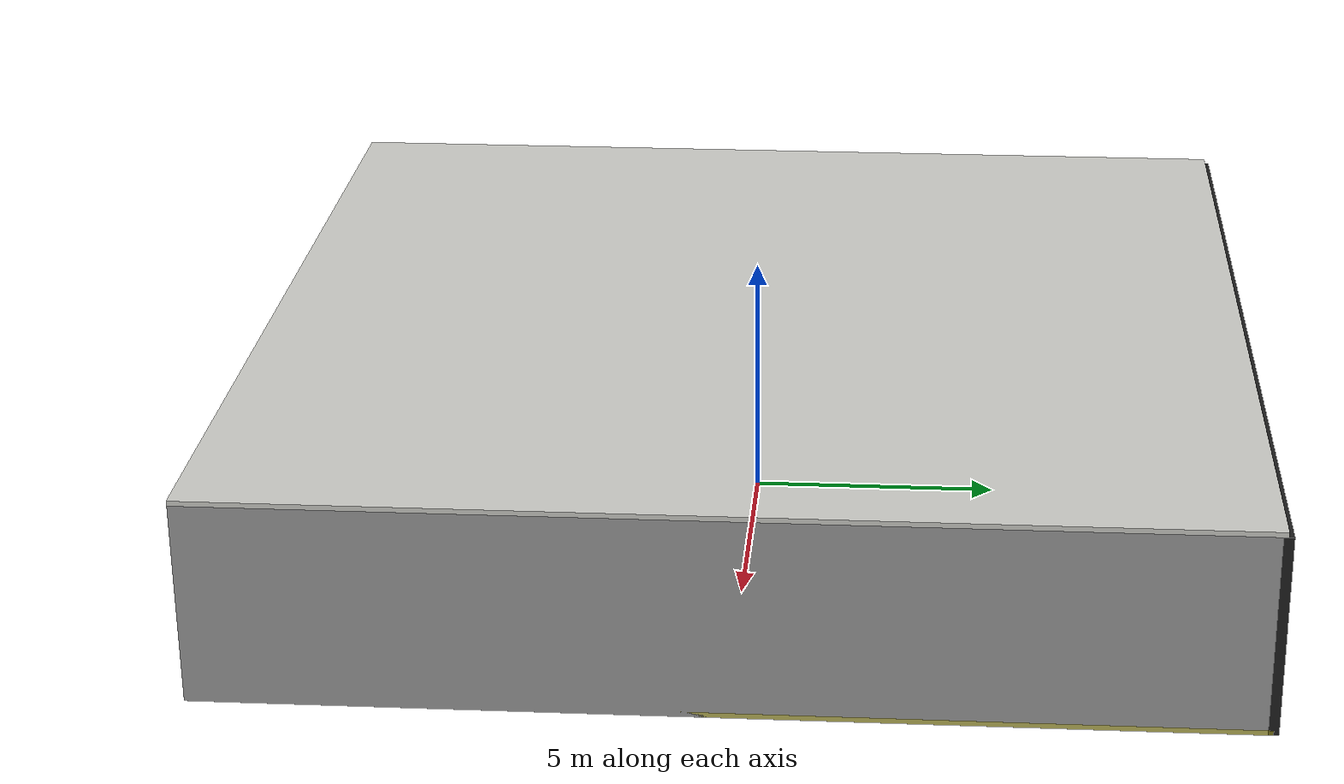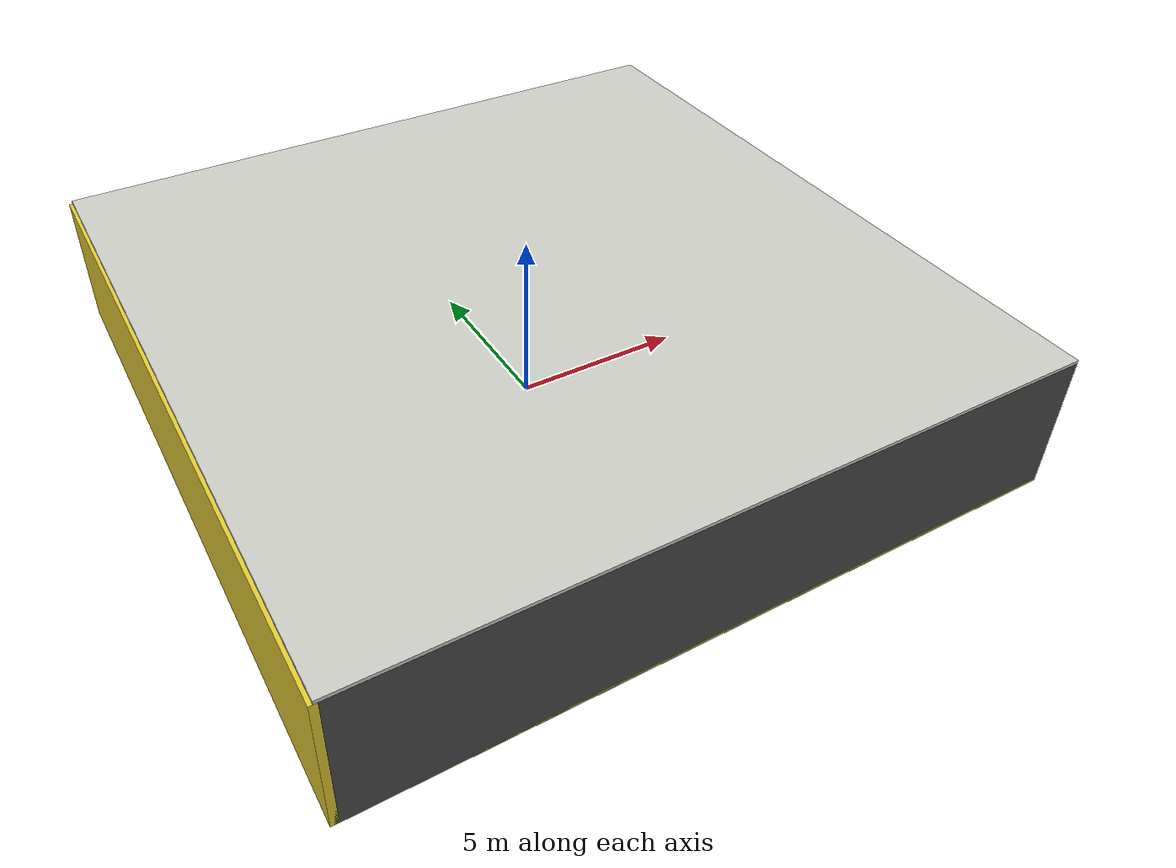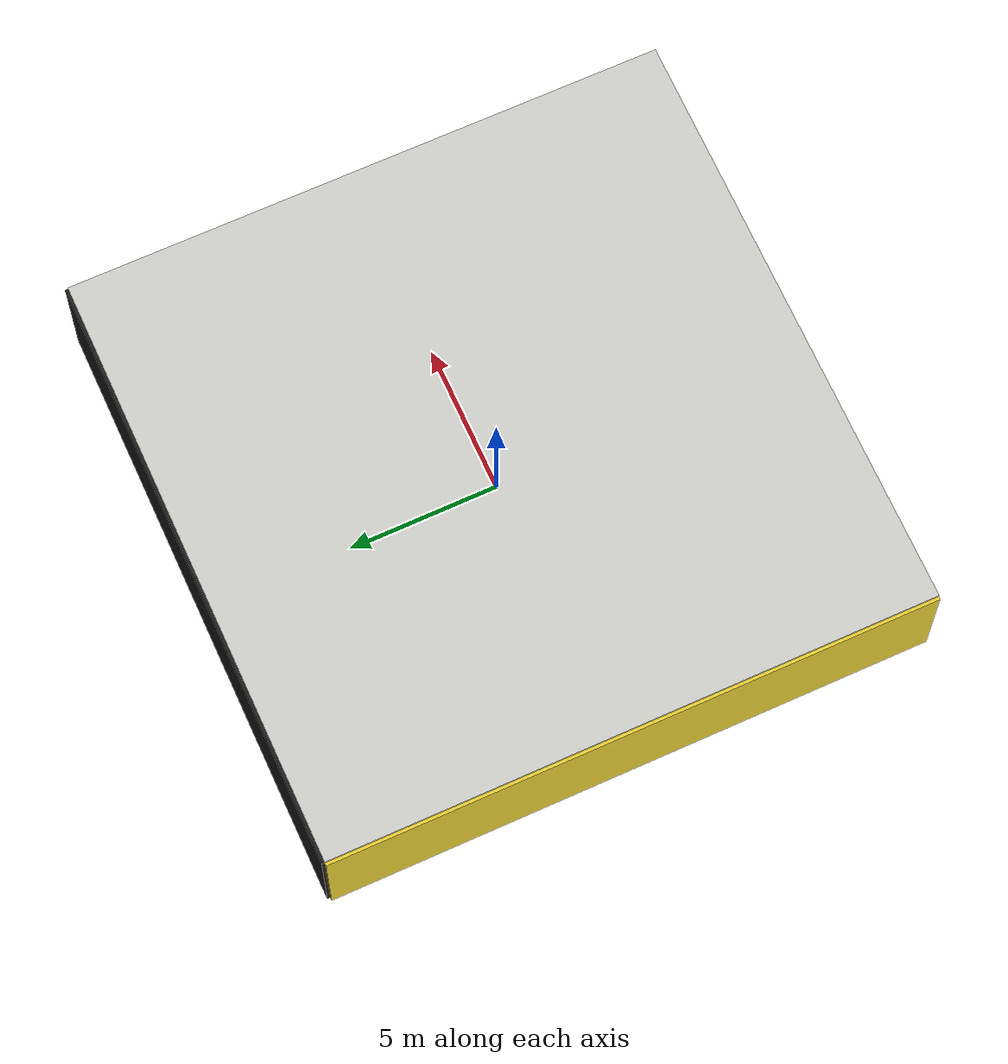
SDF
<sdf version="1.4">
 <world name="default">
  <physics type="ode">
   <max_step_size>0.001</max_step_size>
   <real_time_factor>1</real_time_factor>
   <real_time_update_rate>1000</real_time_update_rate>
   <gravity>0 0 -9.8</gravity>
  </physics>
  <scene><ambient>0.4 0.4 0.4 1</ambient><background>0.7 0.7 0.7 1</background><shadows>1</shadows></scene>
  <model name="Surrounding">
   <static>1</static>
   <link name="Ceiling">
    <collision name="Ceiling_Collision"><geometry><box><size>20 20 0.1</size></box></geometry></collision>
    <visual name="Ceiling_Visual">
     <geometry><box><size>20 20 0.1</size></box></geometry>
     <material>
      <script><uri>file://media/materials/scripts/gazebo.material</uri><name>Gazebo/CeilingTiled</name></script>
     </material>
    </visual>
    <pose>0 0 4.05 0 0 0</pose>
   </link>
   <link name="Wall_South">
    <collision name="Wall_South_Collision">
     <geometry><box><size>20 0 4</size></box></geometry>
     <pose>0 0 2 0 -0 0</pose>
    </collision>
    <visual name="Wall_South_Visual">
     <pose>0 0 2 0 -0 0</pose>
     <geometry><box><size>20 0 4</size></box></geometry>
     <material>
      <script><uri>file://media/materials/scripts/gazebo.material</uri><name>Gazebo/DarkGrey</name></script>
     </material>
    </visual>
    <velocity_decay><linear>0</linear><angular>0</angular></velocity_decay>
    <pose>0 -10 0 0 -0 0</pose>
   </link>
   <link name="Wall_East">
    <collision name="Wall_21_Collision">
     <geometry><box><size>20 0 4</size></box></geometry>
     <pose>0 0 2 0 -0 0</pose>
    </collision>
    <visual name="Wall_21_Visual">
     <pose>0 0 2 0 -0 0</pose>
     <geometry><box><size>20 0 4</size></box></geometry>
     <material>
      <script><uri>file://media/materials/scripts/gazebo.material</uri><name>Gazebo/Grey</name></script>
     </material>
    </visual>
    <velocity_decay><linear>0</linear><angular>0</angular></velocity_decay>
    <pose>10 0 0 0 -0 1.5708</pose>
   </link>
   <link name="Wall_North">
    <collision name="Wall_22_Collision">
     <geometry><box><size>20 0.2 4</size></box></geometry>
     <pose>0 0 2 0 -0 0</pose>
    </collision>
    <visual name="Wall_22_Visual">
     <pose>0 0 2 0 -0 0</pose>
     <geometry><box><size>20 0.2 4</size></box></geometry>
     <material>
      <script><uri>file://media/materials/scripts/gazebo.material</uri><name>Gazebo/FlatBlack</name></script>
     </material>
    </visual>
    <velocity_decay><linear>0</linear><angular>0</angular></velocity_decay>
    <pose>0 10 0 0 -0 0</pose>
   </link>
   <link name="Wall_West">
    <collision name="Wall_23_Collision">
     <geometry><box><size>20 0.2 4</size></box></geometry>
     <pose>0 0 2 0 -0 0</pose>
    </collision>
    <visual name="Wall_23_Visual">
     <pose>0 0 2 0 -0 0</pose>
     <geometry><box><size>20 0.2 4</size></box></geometry>
     <material>
      <script><uri>file://media/materials/scripts/gazebo.material</uri><name>Gazebo/ZincYellow</name></script>
     </material>
    </visual>
    <velocity_decay><linear>0</linear><angular>0</angular></velocity_decay>
    <pose>-10 0 0 0 0 -1.5708</pose>
   </link>
   <link name="Ground_link">
    <collision name="collision">
     <pose>0 0 .05 0 -0 0</pose>
     <geometry><box><size>20 20 0.1</size></box></geometry>
    </collision>
    <visual name="visual">
     <pose>0 0 .05 0 -0 0</pose>
     <geometry><box><size>20 20 0.1</size></box></geometry>
     <material>
      <script>
       <uri>file://media/materials/scripts/gazebo.material</uri>
       <name>Gazebo/YellowTransparent</name>
      </script>
     </material>
    </visual>
   </link>
   <static>1</static>
  </model>
  <spherical_coordinates>
   <surface_model>EARTH_WGS84</surface_model>
   <latitude_deg>0</latitude_deg>
   <longitude_deg>0</longitude_deg>
   <elevation>0</elevation>
   <heading_deg>0</heading_deg>
  </spherical_coordinates>
  <light name="lightball_0" type="diffuse">
   <diffuse>0.8 0.8 0.8 1</diffuse>
   <specular>0.2 0.2 0.2 1</specular>
   <attenuation>
    <range>100</range>
    <constant>0.7</constant>
    <linear>0.01</linear>
    <quadratic>0.001</quadratic>
   </attenuation>
   <direction>-0.5 0.1 -0.9</direction>
   <pose>-4.89019583183 -4.700441563 3.1629342532 0 0 0</pose>
  </light>
  <light name="lightball_1" type="diffuse">
   <diffuse>0.8 0.8 0.8 1</diffuse>
   <specular>0.2 0.2 0.2 1</specular>
   <attenuation>
    <range>100</range>
    <constant>0.7</constant>
    <linear>0.01</linear>
    <quadratic>0.001</quadratic>
   </attenuation>
   <direction>-0.5 0.1 -0.9</direction>
   <pose>-5.34142958171 -0.984545216681 3.33081892921 0 0 0</pose>
  </light>
  <light name="lightball_2" type="diffuse">
   <diffuse>0.8 0.8 0.8 1</diffuse>
   <specular>0.2 0.2 0.2 1</specular>
   <attenuation>
    <range>100</range>
    <constant>0.7</constant>
    <linear>0.01</linear>
    <quadratic>0.001</quadratic>
   </attenuation>
   <direction>-0.5 0.1 -0.9</direction>
   <pose>6.96866670945 2.58885183302 3.68525878001 0 0 0</pose>
  </light>
  <light name="lightball_3" type="diffuse">
   <diffuse>0.8 0.8 0.8 1</diffuse>
   <specular>0.2 0.2 0.2 1</specular>
   <attenuation>
    <range>100</range>
    <constant>0.7</constant>
    <linear>0.01</linear>
    <quadratic>0.001</quadratic>
   </attenuation>
   <direction>-0.5 0.1 -0.9</direction>
   <pose>9.70738481684 7.63392097424 1.79246198509 0 0 0</pose>
  </light>
  <light name="lightball_4" type="diffuse">
   <diffuse>0.8 0.8 0.8 1</diffuse>
   <specular>0.2 0.2 0.2 1</specular>
   <attenuation>
    <range>100</range>
    <constant>0.7</constant>
    <linear>0.01</linear>
    <quadratic>0.001</quadratic>
   </attenuation>
   <direction>-0.5 0.1 -0.9</direction>
   <pose>6.25730984055 9.36696834801 3.79932540582 0 0 0</pose>
  </light>
  <light name="lightball_5" type="diffuse">
   <diffuse>0.8 0.8 0.8 1</diffuse>
   <specular>0.2 0.2 0.2 1</specular>
   <attenuation>
    <range>100</range>
    <constant>0.7</constant>
    <linear>0.01</linear>
    <quadratic>0.001</quadratic>
   </attenuation>
   <direction>-0.5 0.1 -0.9</direction>
   <pose>5.21443809946 1.21635081527 1.05471209495 0 0 0</pose>
  </light>
  <light name="lightball_6" type="diffuse">
   <diffuse>0.8 0.8 0.8 1</diffuse>
   <specular>0.2 0.2 0.2 1</specular>
   <attenuation>
    <range>100</range>
    <constant>0.7</constant>
    <linear>0.01</linear>
    <quadratic>0.001</quadratic>
   </attenuation>
   <direction>-0.5 0.1 -0.9</direction>
   <pose>4.1658683715 3.09309004949 3.03752360308 0 0 0</pose>
  </light>
  <light name="lightball_7" type="diffuse">
   <diffuse>0.8 0.8 0.8 1</diffuse>
   <specular>0.2 0.2 0.2 1</specular>
   <attenuation>
    <range>100</range>
    <constant>0.7</constant>
    <linear>0.01</linear>
    <quadratic>0.001</quadratic>
   </attenuation>
   <direction>-0.5 0.1 -0.9</direction>
   <pose>-2.9170175554 -5.49028205872 3.4290072806 0 0 0</pose>
  </light>
  <include><uri>model://cabinet</uri><pose>-7.58419113482 7.54470723135 0 0 0 1.1643291612</pose></include>
  <include>
   <uri>model://textured_shapes</uri>
   <pose>-4.07769086717 -7.22098448814 0 0 0 0.768310190999</pose>
  </include>
  <include><uri>model://table</uri><pose>-5.10096750126 -0.918319815141 0 0 0 0.0381892361023</pose></include>
  <include><uri>model://cabinet</uri><pose>-3.84151727441 3.75822812931 0 0 0 0.861350793667</pose></include>
  <include><uri>model://cabinet</uri><pose>4.93280344529 4.55954484343 0 0 0 3.03082137672</pose></include>
  <include><uri>model://cabinet</uri><pose>7.62729446092 -5.15916520151 0 0 0 0.83839010819</pose></include>
 </world>
</sdf>

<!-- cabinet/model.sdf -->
<sdf version="1.5">
  <model name="cabinet">
    <static>true</static>
    <link name="cabinet_bottom_plate">
      <inertial>
        <pose>0 0 -1 0 0 0</pose>
        <inertia>
          <ixx>2.050000</ixx>
          <ixy>0</ixy>
          <ixz>0</ixz>
          <iyy>2.050000</iyy>
          <iyz>0</iyz>
          <izz>2.050000</izz>
        </inertia>
        <mass>25.000000</mass>
      </inertial>
      <collision name="cabinet_bottom_plate_geom">
        <pose>0 0 0.010000 0 0 0</pose>
        <geometry>
          <box>
            <size>0.450000 0.450000 0.020000</size>
          </box>
        </geometry>
      </collision>
      <visual name="cabinet_bottom_plate_geom_visual">
        <pose>0 0 0.010000 0 0 0</pose>
        <geometry>
          <box>
            <size>0.450000 0.450000 0.020000</size>
          </box>
        </geometry>
        <material>
          <script>
            <uri>model://media/materials/scripts/gazebo.material</uri>
            <name>Gazebo/Wood</name>
          </script>
        </material>
      </visual>
      <collision name="cabinet_bottom_plate_geom_cabinet_back_plate">
        <pose>0.235000 0 0.510000 0 0 0</pose>
        <geometry>
          <box>
            <size>0.020000 0.450000 1.020000</size>
          </box>
        </geometry>
      </collision>
      <visual name="cabinet_bottom_plate_geom_cabinet_back_plate_visual">
        <pose>0.235000 0 0.510000 0 0 0</pose>
        <geometry>
          <box>
            <size>0.020000 0.450000 1.020000</size>
          </box>
        </geometry>
        <material>
          <script>
            <uri>model://media/materials/scripts/gazebo.material</uri>
            <name>Gazebo/Wood</name>
          </script>
        </material>
      </visual>
      <collision name="cabinet_bottom_plate_geom_cabinet_left_plate">
        <pose>0 0.235000 0.510000 0 0 0</pose>
        <geometry>
          <box>
            <size>0.450000 0.020000 1.020000</size>
          </box>
        </geometry>
      </collision>
      <visual name="cabinet_bottom_plate_geom_cabinet_left_plate_visual">
        <pose>0 0.235000 0.510000 0 0 0</pose>
        <geometry>
          <box>
            <size>0.450000 0.020000 1.020000</size>
          </box>
        </geometry>
        <material>
          <script>
            <uri>model://media/materials/scripts/gazebo.material</uri>
            <name>Gazebo/Wood</name>
          </script>
        </material>
      </visual>
      <collision name="cabinet_bottom_plate_geom_cabinet_middle_plate">
        <pose>0 0 0.510000 0 0 0</pose>
        <geometry>
          <box>
            <size>0.450000 0.450000 0.020000</size>
          </box>
        </geometry>
      </collision>
      <visual name="cabinet_bottom_plate_geom_cabinet_middle_plate_visual">
        <pose>0 0 0.510000 0 0 0</pose>
        <geometry>
          <box>
            <size>0.450000 0.450000 0.020000</size>
          </box>
        </geometry>
        <material>
          <script>
            <uri>model://media/materials/scripts/gazebo.material</uri>
            <name>Gazebo/Wood</name>
          </script>
        </material>
      </visual>
      <collision name="cabinet_bottom_plate_geom_cabinet_right_plate">
        <pose>0 -0.235000 0.510000 0 0 0</pose>
        <geometry>
          <box>
            <size>0.450000 0.020000 1.020000</size>
          </box>
        </geometry>
      </collision>
      <visual name="cabinet_bottom_plate_geom_cabinet_right_plate_visual">
        <pose>0 -0.235000 0.510000 0 0 0</pose>
        <geometry>
          <box>
            <size>0.450000 0.020000 1.020000</size>
          </box>
        </geometry>
        <material>
          <script>
            <uri>model://media/materials/scripts/gazebo.material</uri>
            <name>Gazebo/Wood</name>
          </script>
        </material>
      </visual>
      <collision name="cabinet_bottom_plate_geom_cabinet_top_plate">
        <pose>0 0 1.010000 0 0 0</pose>
        <geometry>
          <box>
            <size>0.450000 0.450000 0.020000</size>
          </box>
        </geometry>
      </collision>
      <visual name="cabinet_bottom_plate_geom_cabinet_top_plate_visual">
        <pose>0 0 1.010000 0 0 0</pose>
        <geometry>
          <box>
            <size>0.450000 0.450000 0.020000</size>
          </box>
        </geometry>
        <material>
          <script>
            <uri>model://media/materials/scripts/gazebo.material</uri>
            <name>Gazebo/Wood</name>
          </script>
        </material>
      </visual>
    </link>
  </model>
</sdf>

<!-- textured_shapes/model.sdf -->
<sdf version="1.6">
  <model name="textured_shapes">
    <pose>0 0 0.5 0 0 0</pose>
    <link name="box">
      <pose>0 -1.5 0 0 0 0</pose>
      <collision name="collision">
        <geometry>
          <box>
            <size>1 1 1</size>
          </box>
        </geometry>
      </collision>
      <visual name="visual">
        <geometry>
          <box>
            <size>1 1 1</size>
          </box>
        </geometry>
        <material>
          <script>
            <uri>model://../model_source/models/textured_shapes/materials/scripts</uri>
            <uri>model://../model_source/models/textured_shapes/materials/textures</uri>
            <name>TexturedShape/Squares</name>
          </script>
        </material>
      </visual>
    </link>
    <link name="sphere">
      <collision name="collision">
        <geometry>
          <sphere>
            <radius>0.5</radius>
          </sphere>
        </geometry>
      </collision>
      <visual name="visual">
        <geometry>
          <sphere>
            <radius>0.5</radius>
          </sphere>
        </geometry>
        <material>
          <script>
            <uri>model://../model_source/models/textured_shapes/materials/scripts</uri>
            <uri>model://../model_source/models/textured_shapes/materials/textures</uri>
            <name>TexturedShape/Squares</name>
          </script>
        </material>
      </visual>
    </link>
    <link name="cylinder">
      <pose>0 1.5 0 0 0 0</pose>
      <collision name="collision">
        <geometry>
          <cylinder>
            <radius>0.5</radius>
            <length>1</length>
          </cylinder>
        </geometry>
      </collision>
      <visual name="visual">
        <geometry>
          <cylinder>
            <radius>0.5</radius>
            <length>1</length>
          </cylinder>
        </geometry>
        <material>
          <script>
            <uri>model://../model_source/models/textured_shapes/materials/scripts</uri>
            <uri>model://../model_source/models/textured_shapes/materials/textures</uri>
            <name>TexturedShape/Squares</name>
          </script>
        </material>
      </visual>
    </link>
  </model>
</sdf>

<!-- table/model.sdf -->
<sdf version="1.5">
  <model name="table">
    <static>true</static>
    <link name="link">
      <collision name="surface">
        <pose>0 0 1.0 0 0 0</pose>
        <geometry>
          <box>
            <size>1.5 0.8 0.03</size>
          </box>
        </geometry>
        <surface>
          <friction>
            <ode>
              <mu>0.6</mu>
              <mu2>0.6</mu2>
            </ode>
          </friction>
        </surface>
      </collision>
      <visual name="visual1">
        <pose>0 0 1.0 0 0 0</pose>
        <geometry>
          <box>
            <size>1.5 0.8 0.03</size>
          </box>
        </geometry>
        <material>
          <script>
            <uri>model://media/materials/scripts/gazebo.material</uri>
            <name>Gazebo/Wood</name>
          </script>
        </material>
      </visual>
      <collision name="front_left_leg">
        <pose>0.68 0.38 0.5 0 0 0</pose>
        <geometry>
          <cylinder>
            <radius>0.02</radius>
            <length>1.0</length>
          </cylinder>
        </geometry>
      </collision>
      <visual name="front_left_leg">
        <pose>0.68 0.38 0.5 0 0 0</pose>
        <geometry>
          <cylinder>
            <radius>0.02</radius>
            <length>1.0</length>
          </cylinder>
        </geometry>
        <material>
          <script>
            <uri>model://media/materials/scripts/gazebo.material</uri>
            <name>Gazebo/Grey</name>
          </script>
        </material>
      </visual>
      <collision name="front_right_leg">
        <pose>0.68 -0.38 0.5 0 0 0</pose>
        <geometry>
          <cylinder>
            <radius>0.02</radius>
            <length>1.0</length>
          </cylinder>
        </geometry>
      </collision>
      <visual name="front_right_leg">
        <pose>0.68 -0.38 0.5 0 0 0</pose>
        <geometry>
          <cylinder>
            <radius>0.02</radius>
            <length>1.0</length>
          </cylinder>
        </geometry>
        <material>
          <script>
            <uri>model://media/materials/scripts/gazebo.material</uri>
            <name>Gazebo/Grey</name>
          </script>
        </material>
      </visual>
      <collision name="back_right_leg">
        <pose>-0.68 -0.38 0.5 0 0 0</pose>
        <geometry>
          <cylinder>
            <radius>0.02</radius>
            <length>1.0</length>
          </cylinder>
        </geometry>
      </collision>
      <visual name="back_right_leg">
        <pose>-0.68 -0.38 0.5 0 0 0</pose>
        <geometry>
          <cylinder>
            <radius>0.02</radius>
            <length>1.0</length>
          </cylinder>
        </geometry>
        <material>
          <script>
            <uri>model://media/materials/scripts/gazebo.material</uri>
            <name>Gazebo/Grey</name>
          </script>
        </material>
      </visual>
      <collision name="back_left_leg">
        <pose>-0.68 0.38 0.5 0 0 0</pose>
        <geometry>
          <cylinder>
            <radius>0.02</radius>
            <length>1.0</length>
          </cylinder>
        </geometry>
      </collision>
      <visual name="back_left_leg">
        <pose>-0.68 0.38 0.5 0 0 0</pose>
        <geometry>
          <cylinder>
            <radius>0.02</radius>
            <length>1.0</length>
          </cylinder>
        </geometry>
        <material>
          <script>
            <uri>model://media/materials/scripts/gazebo.material</uri>
            <name>Gazebo/Grey</name>
          </script>
        </material>
      </visual>
    </link>
  </model>
</sdf>
